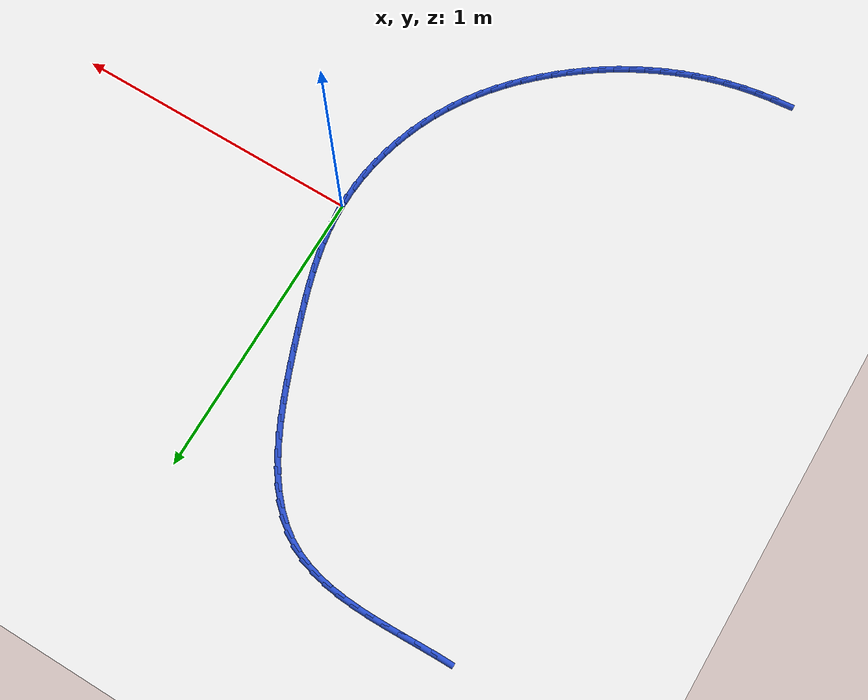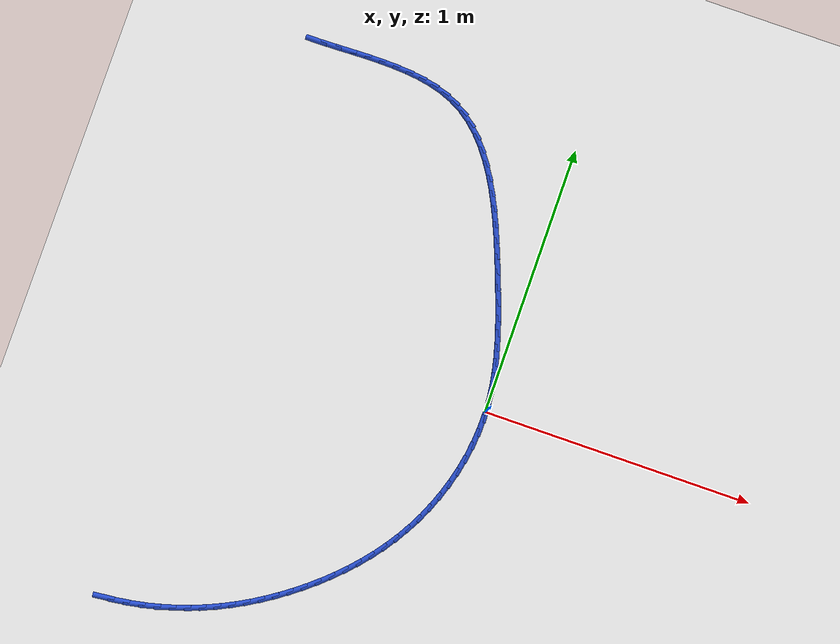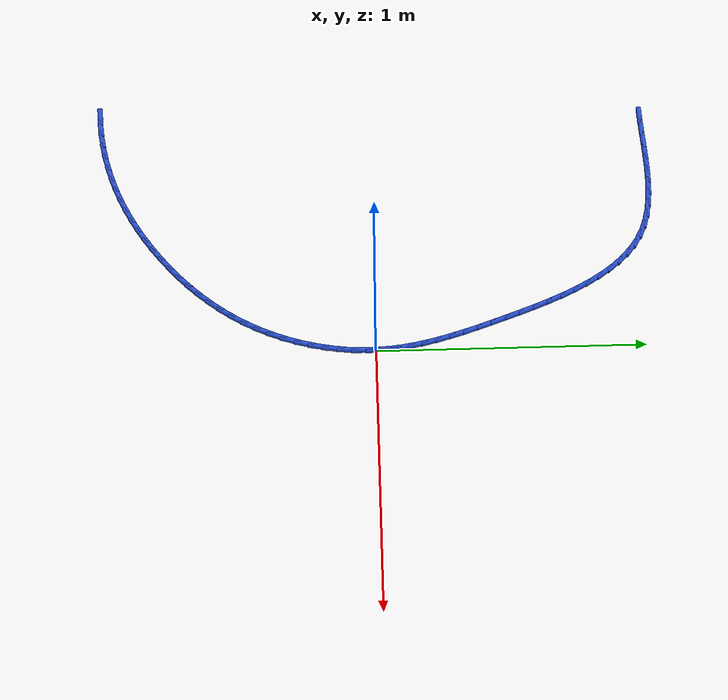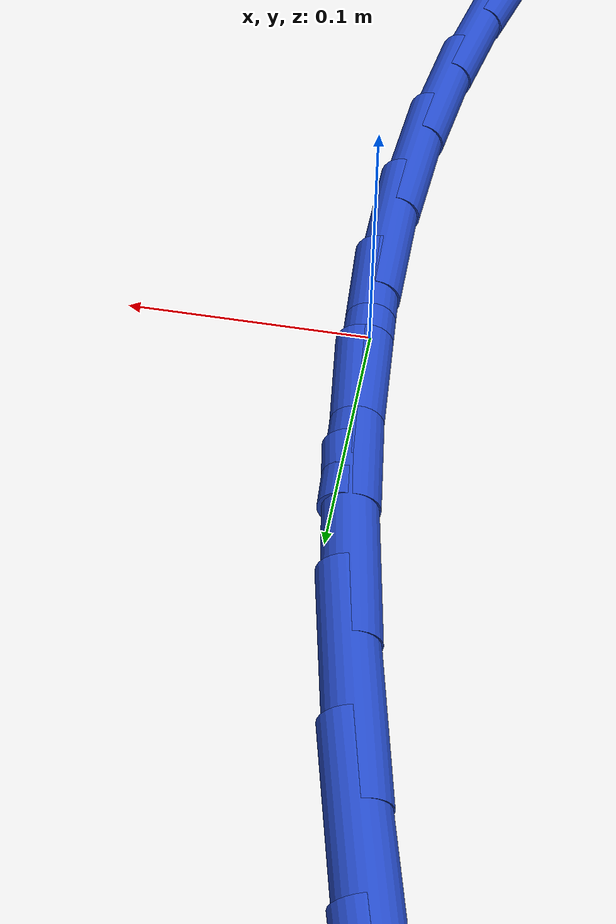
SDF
<sdf version="1.6">
 <world name="default">
  <model name="ground_plane">
   <static>1</static>
   <link name="link">
    <collision name="collision">
     <geometry><plane><normal>0 0 1</normal><size>100 100</size></plane></geometry>
     <surface><friction><ode><mu>100</mu><mu2>50</mu2></ode></friction></surface>
    </collision>
    <visual name="visual">
     <cast_shadows>0</cast_shadows>
     <geometry><plane><normal>0 0 1</normal><size>100 100</size></plane></geometry>
     <material>
      <script><uri>file://media/materials/scripts/gazebo.material</uri><name>Gazebo/WhiteGlow</name></script>
     </material>
    </visual>
   </link>
  </model>
  <model name="line">
   <link name="link_0">
    <pose>-2.42861286636753e-17 -8.326672684688674e-17 0.01 0 1.57 -1.509407505022223</pose>
    <collision name="collision">
     <geometry><cylinder><radius>0.01</radius><length>0.08</length></cylinder></geometry>
    </collision>
    <visual name="visual">
     <material>
      <script><name>Gazebo/Blue</name><uri>file://media/materials/scripts/gazebo.material</uri></script>
     </material>
     <geometry><cylinder><radius>0.01</radius><length>0.08</length></cylinder></geometry>
    </visual>
   </link>
   <link name="link_1">
    <pose>-0.0031903485128099303 0.051904234534951084 0.01 0 1.57 -1.448905125997521</pose>
    <collision name="collision">
     <geometry><cylinder><radius>0.01</radius><length>0.08</length></cylinder></geometry>
    </collision>
    <visual name="visual">
     <material>
      <script><name>Gazebo/Blue</name><uri>file://media/materials/scripts/gazebo.material</uri></script>
     </material>
     <geometry><cylinder><radius>0.01</radius><length>0.08</length></cylinder></geometry>
    </visual>
   </link>
   <link name="link_2">
    <pose>-0.009490720672928235 0.10333648436121304 0.01 0 1.57 -1.3947297541744024</pose>
    <collision name="collision">
     <geometry><cylinder><radius>0.01</radius><length>0.08</length></cylinder></geometry>
    </collision>
    <visual name="visual">
     <material>
      <script><name>Gazebo/Blue</name><uri>file://media/materials/scripts/gazebo.material</uri></script>
     </material>
     <geometry><cylinder><radius>0.01</radius><length>0.08</length></cylinder></geometry>
    </visual>
   </link>
   <link name="link_3">
    <pose>-0.018585847566882273 0.15445891314641036 0.01 0 1.57 -1.3475167694829673</pose>
    <collision name="collision">
     <geometry><cylinder><radius>0.01</radius><length>0.08</length></cylinder></geometry>
    </collision>
    <visual name="visual">
     <material>
      <script><name>Gazebo/Blue</name><uri>file://media/materials/scripts/gazebo.material</uri></script>
     </material>
     <geometry><cylinder><radius>0.01</radius><length>0.08</length></cylinder></geometry>
    </visual>
   </link>
   <link name="link_4">
    <pose>-0.03016046028119939 0.2054336845581677 0.01 0 1.57 -1.3076014209795974</pose>
    <collision name="collision">
     <geometry><cylinder><radius>0.01</radius><length>0.08</length></cylinder></geometry>
    </collision>
    <visual name="visual">
     <material>
      <script><name>Gazebo/Blue</name><uri>file://media/materials/scripts/gazebo.material</uri></script>
     </material>
     <geometry><cylinder><radius>0.01</radius><length>0.08</length></cylinder></geometry>
    </visual>
   </link>
   <link name="link_5">
    <pose>-0.04389928990240697 0.25642296226410977 0.01 0 1.57 -1.2750776742891141</pose>
    <collision name="collision">
     <geometry><cylinder><radius>0.01</radius><length>0.08</length></cylinder></geometry>
    </collision>
    <visual name="visual">
     <material>
      <script><name>Gazebo/Blue</name><uri>file://media/materials/scripts/gazebo.material</uri></script>
     </material>
     <geometry><cylinder><radius>0.01</radius><length>0.08</length></cylinder></geometry>
    </visual>
   </link>
   <link name="link_6">
    <pose>-0.05948706751703232 0.30758890993186094 0.01 0 1.57 -1.2498638487067557</pose>
    <collision name="collision">
     <geometry><cylinder><radius>0.01</radius><length>0.08</length></cylinder></geometry>
    </collision>
    <visual name="visual">
     <material>
      <script><name>Gazebo/Blue</name><uri>file://media/materials/scripts/gazebo.material</uri></script>
     </material>
     <geometry><cylinder><radius>0.01</radius><length>0.08</length></cylinder></geometry>
    </visual>
   </link>
   <link name="link_7">
    <pose>-0.07660852421160283 0.359093691229046 0.01 0 1.57 -1.231762162442797</pose>
    <collision name="collision">
     <geometry><cylinder><radius>0.01</radius><length>0.08</length></cylinder></geometry>
    </collision>
    <visual name="visual">
     <material>
      <script><name>Gazebo/Blue</name><uri>file://media/materials/scripts/gazebo.material</uri></script>
     </material>
     <geometry><cylinder><radius>0.01</radius><length>0.08</length></cylinder></geometry>
    </visual>
   </link>
   <link name="link_8">
    <pose>-0.09494839107264581 0.4110994698232895 0.01 0 1.57 -1.220505767968138</pose>
    <collision name="collision">
     <geometry><cylinder><radius>0.01</radius><length>0.08</length></cylinder></geometry>
    </collision>
    <visual name="visual">
     <material>
      <script><name>Gazebo/Blue</name><uri>file://media/materials/scripts/gazebo.material</uri></script>
     </material>
     <geometry><cylinder><radius>0.01</radius><length>0.08</length></cylinder></geometry>
    </visual>
   </link>
   <link name="link_9">
    <pose>-0.11419139918668866 0.4637684093822162 0.01 0 1.57 -1.213782103676677</pose>
    <collision name="collision">
     <geometry><cylinder><radius>0.01</radius><length>0.08</length></cylinder></geometry>
    </collision>
    <visual name="visual">
     <material>
      <script><name>Gazebo/Blue</name><uri>file://media/materials/scripts/gazebo.material</uri></script>
     </material>
     <geometry><cylinder><radius>0.01</radius><length>0.08</length></cylinder></geometry>
    </visual>
   </link>
   <link name="link_10">
    <pose>-0.13410415264954317 0.5171541123847637 0.01 0 1.57 -1.2029447561874258</pose>
    <collision name="collision">
     <geometry><cylinder><radius>0.01</radius><length>0.08</length></cylinder></geometry>
    </collision>
    <visual name="visual">
     <material>
      <script><name>Gazebo/Blue</name><uri>file://media/materials/scripts/gazebo.material</uri></script>
     </material>
     <geometry><cylinder><radius>0.01</radius><length>0.08</length></cylinder></geometry>
    </visual>
   </link>
   <link name="link_11">
    <pose>-0.15479891496273765 0.5708518471617396 0.01 0 1.57 -1.1856790009862184</pose>
    <collision name="collision">
     <geometry><cylinder><radius>0.01</radius><length>0.08</length></cylinder></geometry>
    </collision>
    <visual name="visual">
     <material>
      <script><name>Gazebo/Blue</name><uri>file://media/materials/scripts/gazebo.material</uri></script>
     </material>
     <geometry><cylinder><radius>0.01</radius><length>0.08</length></cylinder></geometry>
    </visual>
   </link>
   <link name="link_12">
    <pose>-0.17647915547173612 0.6243359457925618 0.01 0 1.57 -1.1616792368808688</pose>
    <collision name="collision">
     <geometry><cylinder><radius>0.01</radius><length>0.08</length></cylinder></geometry>
    </collision>
    <visual name="visual">
     <material>
      <script><name>Gazebo/Blue</name><uri>file://media/materials/scripts/gazebo.material</uri></script>
     </material>
     <geometry><cylinder><radius>0.01</radius><length>0.08</length></cylinder></geometry>
    </visual>
   </link>
   <link name="link_13">
    <pose>-0.19934834402565715 0.6770807396888172 0.01 0 1.57 -1.1303844242910692</pose>
    <collision name="collision">
     <geometry><cylinder><radius>0.01</radius><length>0.08</length></cylinder></geometry>
    </collision>
    <visual name="visual">
     <material>
      <script><name>Gazebo/Blue</name><uri>file://media/materials/scripts/gazebo.material</uri></script>
     </material>
     <geometry><cylinder><radius>0.01</radius><length>0.08</length></cylinder></geometry>
    </visual>
   </link>
   <link name="link_14">
    <pose>-0.22360995047361934 0.7285605602620926 0.01 0 1.57 -1.0909741716764652</pose>
    <collision name="collision">
     <geometry><cylinder><radius>0.01</radius><length>0.08</length></cylinder></geometry>
    </collision>
    <visual name="visual">
     <material>
      <script><name>Gazebo/Blue</name><uri>file://media/materials/scripts/gazebo.material</uri></script>
     </material>
     <geometry><cylinder><radius>0.01</radius><length>0.08</length></cylinder></geometry>
    </visual>
   </link>
   <link name="link_15">
    <pose>-0.24946744466474133 0.7782497389239749 0.01 0 1.57 -1.0423647675983665</pose>
    <collision name="collision">
     <geometry><cylinder><radius>0.01</radius><length>0.08</length></cylinder></geometry>
    </collision>
    <visual name="visual">
     <material>
      <script><name>Gazebo/Blue</name><uri>file://media/materials/scripts/gazebo.material</uri></script>
     </material>
     <geometry><cylinder><radius>0.01</radius><length>0.08</length></cylinder></geometry>
    </visual>
   </link>
   <link name="link_16">
    <pose>-0.27712429644814135 0.8256226070860507 0.01 0 1.57 -0.9832226258414601</pose>
    <collision name="collision">
     <geometry><cylinder><radius>0.01</radius><length>0.08</length></cylinder></geometry>
    </collision>
    <visual name="visual">
     <material>
      <script><name>Gazebo/Blue</name><uri>file://media/materials/scripts/gazebo.material</uri></script>
     </material>
     <geometry><cylinder><radius>0.01</radius><length>0.08</length></cylinder></geometry>
    </visual>
   </link>
   <link name="link_17">
    <pose>-0.3067839756729383 0.8701534961599077 0.01 0 1.57 -0.9120258257607147</pose>
    <collision name="collision">
     <geometry><cylinder><radius>0.01</radius><length>0.08</length></cylinder></geometry>
    </collision>
    <visual name="visual">
     <material>
      <script><name>Gazebo/Blue</name><uri>file://media/materials/scripts/gazebo.material</uri></script>
     </material>
     <geometry><cylinder><radius>0.01</radius><length>0.08</length></cylinder></geometry>
    </visual>
   </link>
   <link name="link_18">
    <pose>-0.33864995218825067 0.9113167375571323 0.01 0 1.57 -0.8272236902606528</pose>
    <collision name="collision">
     <geometry><cylinder><radius>0.01</radius><length>0.08</length></cylinder></geometry>
    </collision>
    <visual name="visual">
     <material>
      <script><name>Gazebo/Blue</name><uri>file://media/materials/scripts/gazebo.material</uri></script>
     </material>
     <geometry><cylinder><radius>0.01</radius><length>0.08</length></cylinder></geometry>
    </visual>
   </link>
   <link name="link_19">
    <pose>-0.3729256958431969 0.9485866626893112 0.01 0 1.57 -0.7275613210673137</pose>
    <collision name="collision">
     <geometry><cylinder><radius>0.01</radius><length>0.08</length></cylinder></geometry>
    </collision>
    <visual name="visual">
     <material>
      <script><name>Gazebo/Blue</name><uri>file://media/materials/scripts/gazebo.material</uri></script>
     </material>
     <geometry><cylinder><radius>0.01</radius><length>0.08</length></cylinder></geometry>
    </visual>
   </link>
   <link name="link_20">
    <pose>-0.4098146764868956 0.9814376029680317 0.01 0 1.57 -0.6126217324154731</pose>
    <collision name="collision">
     <geometry><cylinder><radius>0.01</radius><length>0.08</length></cylinder></geometry>
    </collision>
    <visual name="visual">
     <material>
      <script><name>Gazebo/Blue</name><uri>file://media/materials/scripts/gazebo.material</uri></script>
     </material>
     <geometry><cylinder><radius>0.01</radius><length>0.08</length></cylinder></geometry>
    </visual>
   </link>
   <link name="link_21">
    <pose>-0.4495203639684655 1.0093438898048808 0.01 0 1.57 -0.4848475349232451</pose>
    <collision name="collision">
     <geometry><cylinder><radius>0.01</radius><length>0.08</length></cylinder></geometry>
    </collision>
    <visual name="visual">
     <material>
      <script><name>Gazebo/Blue</name><uri>file://media/materials/scripts/gazebo.material</uri></script>
     </material>
     <geometry><cylinder><radius>0.01</radius><length>0.08</length></cylinder></geometry>
    </visual>
   </link>
   <link name="link_22">
    <pose>-0.492220053722029 1.031837568467524 0.01 0 1.57 -0.36247978700828726</pose>
    <collision name="collision">
     <geometry><cylinder><radius>0.01</radius><length>0.08</length></cylinder></geometry>
    </collision>
    <visual name="visual">
     <material>
      <script><name>Gazebo/Blue</name><uri>file://media/materials/scripts/gazebo.material</uri></script>
     </material>
     <geometry><cylinder><radius>0.01</radius><length>0.08</length></cylinder></geometry>
    </visual>
   </link>
   <link name="link_23">
    <pose>-0.5377881079770124 1.049118643502953 0.01 0 1.57 -0.25802166672443005</pose>
    <collision name="collision">
     <geometry><cylinder><radius>0.01</radius><length>0.08</length></cylinder></geometry>
    </collision>
    <visual name="visual">
     <material>
      <script><name>Gazebo/Blue</name><uri>file://media/materials/scripts/gazebo.material</uri></script>
     </material>
     <geometry><cylinder><radius>0.01</radius><length>0.08</length></cylinder></geometry>
    </visual>
   </link>
   <link name="link_24">
    <pose>-0.585904084656261 1.0618166575286512 0.01 0 1.57 -0.1721284894357185</pose>
    <collision name="collision">
     <geometry><cylinder><radius>0.01</radius><length>0.08</length></cylinder></geometry>
    </collision>
    <visual name="visual">
     <material>
      <script><name>Gazebo/Blue</name><uri>file://media/materials/scripts/gazebo.material</uri></script>
     </material>
     <geometry><cylinder><radius>0.01</radius><length>0.08</length></cylinder></geometry>
    </visual>
   </link>
   <link name="link_25">
    <pose>-0.6362443234198425 1.0705682493418942 0.01 0 1.57 -0.1037933664151148</pose>
    <collision name="collision">
     <geometry><cylinder><radius>0.01</radius><length>0.08</length></cylinder></geometry>
    </collision>
    <visual name="visual">
     <material>
      <script><name>Gazebo/Blue</name><uri>file://media/materials/scripts/gazebo.material</uri></script>
     </material>
     <geometry><cylinder><radius>0.01</radius><length>0.08</length></cylinder></geometry>
    </visual>
   </link>
   <link name="link_26">
    <pose>-0.6884851639278244 1.0760100577399572 0.01 0 1.57 -0.05139983542496204</pose>
    <collision name="collision">
     <geometry><cylinder><radius>0.01</radius><length>0.08</length></cylinder></geometry>
    </collision>
    <visual name="visual">
     <material>
      <script><name>Gazebo/Blue</name><uri>file://media/materials/scripts/gazebo.material</uri></script>
     </material>
     <geometry><cylinder><radius>0.01</radius><length>0.08</length></cylinder></geometry>
    </visual>
   </link>
   <link name="link_27">
    <pose>-0.7423029458402749 1.078778721520117 0.01 0 1.57 -0.01329400211112892</pose>
    <collision name="collision">
     <geometry><cylinder><radius>0.01</radius><length>0.08</length></cylinder></geometry>
    </collision>
    <visual name="visual">
     <material>
      <script><name>Gazebo/Blue</name><uri>file://media/materials/scripts/gazebo.material</uri></script>
     </material>
     <geometry><cylinder><radius>0.01</radius><length>0.08</length></cylinder></geometry>
    </visual>
   </link>
   <link name="link_28">
    <pose>-0.797374008817261 1.0795108794796489 0.01 0 1.57 0.011922665601863405</pose>
    <collision name="collision">
     <geometry><cylinder><radius>0.01</radius><length>0.08</length></cylinder></geometry>
    </collision>
    <visual name="visual">
     <material>
      <script><name>Gazebo/Blue</name><uri>file://media/materials/scripts/gazebo.material</uri></script>
     </material>
     <geometry><cylinder><radius>0.01</radius><length>0.08</length></cylinder></geometry>
    </visual>
   </link>
   <link name="link_29">
    <pose>-0.8533746925188507 1.0788431704158281 0.01 0 1.57 0.02527322783878437</pose>
    <collision name="collision">
     <geometry><cylinder><radius>0.01</radius><length>0.08</length></cylinder></geometry>
    </collision>
    <visual name="visual">
     <material>
      <script><name>Gazebo/Blue</name><uri>file://media/materials/scripts/gazebo.material</uri></script>
     </material>
     <geometry><cylinder><radius>0.01</radius><length>0.08</length></cylinder></geometry>
    </visual>
   </link>
   <link name="link_30">
    <pose>-0.9099813366051117 1.077412233125931 0.01 0 1.57 0.027371535123915446</pose>
    <collision name="collision">
     <geometry><cylinder><radius>0.01</radius><length>0.08</length></cylinder></geometry>
    </collision>
    <visual name="visual">
     <material>
      <script><name>Gazebo/Blue</name><uri>file://media/materials/scripts/gazebo.material</uri></script>
     </material>
     <geometry><cylinder><radius>0.01</radius><length>0.08</length></cylinder></geometry>
    </visual>
   </link>
   <link name="link_31">
    <pose>-0.9668702807361116 1.0758547064072332 0.01 0 1.57 0.018423981411699646</pose>
    <collision name="collision">
     <geometry><cylinder><radius>0.01</radius><length>0.08</length></cylinder></geometry>
    </collision>
    <visual name="visual">
     <material>
      <script><name>Gazebo/Blue</name><uri>file://media/materials/scripts/gazebo.material</uri></script>
     </material>
     <geometry><cylinder><radius>0.01</radius><length>0.08</length></cylinder></geometry>
    </visual>
   </link>
   <link name="link_32">
    <pose>-1.023717864571918 1.0748072290570103 0.01 0 1.57 -0.001754503637904101</pose>
    <collision name="collision">
     <geometry><cylinder><radius>0.01</radius><length>0.08</length></cylinder></geometry>
    </collision>
    <visual name="visual">
     <material>
      <script><name>Gazebo/Blue</name><uri>file://media/materials/scripts/gazebo.material</uri></script>
     </material>
     <geometry><cylinder><radius>0.01</radius><length>0.08</length></cylinder></geometry>
    </visual>
   </link>
   <link name="link_99">
    <pose>-1.0755688227055293 -1.0739991441265555 0.01 0 1.57 0.09906669944908754</pose>
    <collision name="collision">
     <geometry><cylinder><radius>0.01</radius><length>0.08</length></cylinder></geometry>
    </collision>
    <visual name="visual">
     <material>
      <script><name>Gazebo/Blue</name><uri>file://media/materials/scripts/gazebo.material</uri></script>
     </material>
     <geometry><cylinder><radius>0.01</radius><length>0.08</length></cylinder></geometry>
    </visual>
   </link>
   <link name="link_100">
    <pose>-1.0196323815741188 -1.0684395057925444 0.01 0 1.57 0.14825849634331956</pose>
    <collision name="collision">
     <geometry><cylinder><radius>0.01</radius><length>0.08</length></cylinder></geometry>
    </collision>
    <visual name="visual">
     <material>
      <script><name>Gazebo/Blue</name><uri>file://media/materials/scripts/gazebo.material</uri></script>
     </material>
     <geometry><cylinder><radius>0.01</radius><length>0.08</length></cylinder></geometry>
    </visual>
   </link>
   <link name="link_101">
    <pose>-0.9642450071730573 -1.0601671576025444 0.01 0 1.57 0.19606597302785184</pose>
    <collision name="collision">
     <geometry><cylinder><radius>0.01</radius><length>0.08</length></cylinder></geometry>
    </collision>
    <visual name="visual">
     <material>
      <script><name>Gazebo/Blue</name><uri>file://media/materials/scripts/gazebo.material</uri></script>
     </material>
     <geometry><cylinder><radius>0.01</radius><length>0.08</length></cylinder></geometry>
    </visual>
   </link>
   <link name="link_102">
    <pose>-0.9097798497553291 -1.0493494189434818 0.01 0 1.57 0.24325319026051814</pose>
    <collision name="collision">
     <geometry><cylinder><radius>0.01</radius><length>0.08</length></cylinder></geometry>
    </collision>
    <visual name="visual">
     <material>
      <script><name>Gazebo/Blue</name><uri>file://media/materials/scripts/gazebo.material</uri></script>
     </material>
     <geometry><cylinder><radius>0.01</radius><length>0.08</length></cylinder></geometry>
    </visual>
   </link>
   <link name="link_103">
    <pose>-0.8565199951096579 -1.0361320553635363 0.01 0 1.57 0.2901202014684126</pose>
    <collision name="collision">
     <geometry><cylinder><radius>0.01</radius><length>0.08</length></cylinder></geometry>
    </collision>
    <visual name="visual">
     <material>
      <script><name>Gazebo/Blue</name><uri>file://media/materials/scripts/gazebo.material</uri></script>
     </material>
     <geometry><cylinder><radius>0.01</radius><length>0.08</length></cylinder></geometry>
    </visual>
   </link>
   <link name="link_104">
    <pose>-0.8044922637349261 -1.0205995041081175 0.01 0 1.57 0.33648572219057266</pose>
    <collision name="collision">
     <geometry><cylinder><radius>0.01</radius><length>0.08</length></cylinder></geometry>
    </collision>
    <visual name="visual">
     <material>
      <script><name>Gazebo/Blue</name><uri>file://media/materials/scripts/gazebo.material</uri></script>
     </material>
     <geometry><cylinder><radius>0.01</radius><length>0.08</length></cylinder></geometry>
    </visual>
   </link>
   <link name="link_105">
    <pose>-0.7536782015646435 -1.002825367509117 0.01 0 1.57 0.3821485261123411</pose>
    <collision name="collision">
     <geometry><cylinder><radius>0.01</radius><length>0.08</length></cylinder></geometry>
    </collision>
    <visual name="visual">
     <material>
      <script><name>Gazebo/Blue</name><uri>file://media/materials/scripts/gazebo.material</uri></script>
     </material>
     <geometry><cylinder><radius>0.01</radius><length>0.08</length></cylinder></geometry>
    </visual>
   </link>
   <link name="link_106">
    <pose>-0.7040593545323195 -0.9828832478984256 0.01 0 1.57 0.4269246313561858</pose>
    <collision name="collision">
     <geometry><cylinder><radius>0.01</radius><length>0.08</length></cylinder></geometry>
    </collision>
    <visual name="visual">
     <material>
      <script><name>Gazebo/Blue</name><uri>file://media/materials/scripts/gazebo.material</uri></script>
     </material>
     <geometry><cylinder><radius>0.01</radius><length>0.08</length></cylinder></geometry>
    </visual>
   </link>
   <link name="link_107">
    <pose>-0.6556172685714637 -0.9608467476079351 0.01 0 1.57 0.4706509041190778</pose>
    <collision name="collision">
     <geometry><cylinder><radius>0.01</radius><length>0.08</length></cylinder></geometry>
    </collision>
    <visual name="visual">
     <material>
      <script><name>Gazebo/Blue</name><uri>file://media/materials/scripts/gazebo.material</uri></script>
     </material>
     <geometry><cylinder><radius>0.01</radius><length>0.08</length></cylinder></geometry>
    </visual>
   </link>
   <link name="link_108">
    <pose>-0.6083334896155875 -0.9367894689695374 0.01 0 1.57 0.5131874711183476</pose>
    <collision name="collision">
     <geometry><cylinder><radius>0.01</radius><length>0.08</length></cylinder></geometry>
    </collision>
    <visual name="visual">
     <material>
      <script><name>Gazebo/Blue</name><uri>file://media/materials/scripts/gazebo.material</uri></script>
     </material>
     <geometry><cylinder><radius>0.01</radius><length>0.08</length></cylinder></geometry>
    </visual>
   </link>
   <link name="link_109">
    <pose>-0.5621895635981999 -0.9107850143151236 0.01 0 1.57 0.5544189295056463</pose>
    <collision name="collision">
     <geometry><cylinder><radius>0.01</radius><length>0.08</length></cylinder></geometry>
    </collision>
    <visual name="visual">
     <material>
      <script><name>Gazebo/Blue</name><uri>file://media/materials/scripts/gazebo.material</uri></script>
     </material>
     <geometry><cylinder><radius>0.01</radius><length>0.08</length></cylinder></geometry>
    </visual>
   </link>
   <link name="link_110">
    <pose>-0.5171670364528101 -0.8829069859765845 0.01 0 1.57 0.5942544435971266</pose>
    <collision name="collision">
     <geometry><cylinder><radius>0.01</radius><length>0.08</length></cylinder></geometry>
    </collision>
    <visual name="visual">
     <material>
      <script><name>Gazebo/Blue</name><uri>file://media/materials/scripts/gazebo.material</uri></script>
     </material>
     <geometry><cylinder><radius>0.01</radius><length>0.08</length></cylinder></geometry>
    </visual>
   </link>
   <link name="link_111">
    <pose>-0.4732474541129293 -0.8532289862858125 0.01 0 1.57 0.6326269174685023</pose>
    <collision name="collision">
     <geometry><cylinder><radius>0.01</radius><length>0.08</length></cylinder></geometry>
    </collision>
    <visual name="visual">
     <material>
      <script><name>Gazebo/Blue</name><uri>file://media/materials/scripts/gazebo.material</uri></script>
     </material>
     <geometry><cylinder><radius>0.01</radius><length>0.08</length></cylinder></geometry>
    </visual>
   </link>
   <link name="link_112">
    <pose>-0.4304123639919645 -0.8218246169574078 0.01 0 1.57 0.6701196075840425</pose>
    <collision name="collision">
     <geometry><cylinder><radius>0.01</radius><length>0.08</length></cylinder></geometry>
    </collision>
    <visual name="visual">
     <material>
      <script><name>Gazebo/Blue</name><uri>file://media/materials/scripts/gazebo.material</uri></script>
     </material>
     <geometry><cylinder><radius>0.01</radius><length>0.08</length></cylinder></geometry>
    </visual>
   </link>
   <link name="link_113">
    <pose>-0.3886786152460525 -0.7887527547368068 0.01 0 1.57 0.7090345887183538</pose>
    <collision name="collision">
     <geometry><cylinder><radius>0.01</radius><length>0.08</length></cylinder></geometry>
    </collision>
    <visual name="visual">
     <material>
      <script><name>Gazebo/Blue</name><uri>file://media/materials/scripts/gazebo.material</uri></script>
     </material>
     <geometry><cylinder><radius>0.01</radius><length>0.08</length></cylinder></geometry>
    </visual>
   </link>
   <link name="link_114">
    <pose>-0.34818983307389806 -0.754019395883294 0.01 0 1.57 0.7500223178862849</pose>
    <collision name="collision">
     <geometry><cylinder><radius>0.01</radius><length>0.08</length></cylinder></geometry>
    </collision>
    <visual name="visual">
     <material>
      <script><name>Gazebo/Blue</name><uri>file://media/materials/scripts/gazebo.material</uri></script>
     </material>
     <geometry><cylinder><radius>0.01</radius><length>0.08</length></cylinder></geometry>
    </visual>
   </link>
   <link name="link_115">
    <pose>-0.30911809092470094 -0.7176186703974677 0.01 0 1.57 0.7932243683820709</pose>
    <collision name="collision">
     <geometry><cylinder><radius>0.01</radius><length>0.08</length></cylinder></geometry>
    </collision>
    <visual name="visual">
     <material>
      <script><name>Gazebo/Blue</name><uri>file://media/materials/scripts/gazebo.material</uri></script>
     </material>
     <geometry><cylinder><radius>0.01</radius><length>0.08</length></cylinder></geometry>
    </visual>
   </link>
   <link name="link_116">
    <pose>-0.271635462247663 -0.6795447082799267 0.01 0 1.57 0.8387645108649066</pose>
    <collision name="collision">
     <geometry><cylinder><radius>0.01</radius><length>0.08</length></cylinder></geometry>
    </collision>
    <visual name="visual">
     <material>
      <script><name>Gazebo/Blue</name><uri>file://media/materials/scripts/gazebo.material</uri></script>
     </material>
     <geometry><cylinder><radius>0.01</radius><length>0.08</length></cylinder></geometry>
    </visual>
   </link>
   <link name="link_117">
    <pose>-0.23591402049198432 -0.6397916395312687 0.01 0 1.57 0.8867412357776526</pose>
    <collision name="collision">
     <geometry><cylinder><radius>0.01</radius><length>0.08</length></cylinder></geometry>
    </collision>
    <visual name="visual">
     <material>
      <script><name>Gazebo/Blue</name><uri>file://media/materials/scripts/gazebo.material</uri></script>
     </material>
     <geometry><cylinder><radius>0.01</radius><length>0.08</length></cylinder></geometry>
    </visual>
   </link>
   <link name="link_118">
    <pose>-0.2021258391068649 -0.5983535941520911 0.01 0 1.57 0.9372188157359728</pose>
    <collision name="collision">
     <geometry><cylinder><radius>0.01</radius><length>0.08</length></cylinder></geometry>
    </collision>
    <visual name="visual">
     <material>
      <script><name>Gazebo/Blue</name><uri>file://media/materials/scripts/gazebo.material</uri></script>
     </material>
     <geometry><cylinder><radius>0.01</radius><length>0.08</length></cylinder></geometry>
    </visual>
   </link>
   <link name="link_119">
    <pose>-0.1704429915415064 -0.5552247021429932 0.01 0 1.57 0.990217216728951</pose>
    <collision name="collision">
     <geometry><cylinder><radius>0.01</radius><length>0.08</length></cylinder></geometry>
    </collision>
    <visual name="visual">
     <material>
      <script><name>Gazebo/Blue</name><uri>file://media/materials/scripts/gazebo.material</uri></script>
     </material>
     <geometry><cylinder><radius>0.01</radius><length>0.08</length></cylinder></geometry>
    </visual>
   </link>
   <link name="link_120">
    <pose>-0.14103755124510892 -0.5103990935045724 0.01 0 1.57 1.0457014674137624</pose>
    <collision name="collision">
     <geometry><cylinder><radius>0.01</radius><length>0.08</length></cylinder></geometry>
    </collision>
    <visual name="visual">
     <material>
      <script><name>Gazebo/Blue</name><uri>file://media/materials/scripts/gazebo.material</uri></script>
     </material>
     <geometry><cylinder><radius>0.01</radius><length>0.08</length></cylinder></geometry>
    </visual>
   </link>
   <link name="link_121">
    <pose>-0.11408159158667104 -0.4638708984953312 0.01 0 1.57 1.102941703900789</pose>
    <collision name="collision">
     <geometry><cylinder><radius>0.01</radius><length>0.08</length></cylinder></geometry>
    </collision>
    <visual name="visual">
     <material>
      <script><name>Gazebo/Blue</name><uri>file://media/materials/scripts/gazebo.material</uri></script>
     </material>
     <geometry><cylinder><radius>0.01</radius><length>0.08</length></cylinder></geometry>
    </visual>
   </link>
   <link name="link_122">
    <pose>-0.08973266230327892 -0.41568095076804396 0.01 0 1.57 1.1596620796470425</pose>
    <collision name="collision">
     <geometry><cylinder><radius>0.01</radius><length>0.08</length></cylinder></geometry>
    </collision>
    <visual name="visual">
     <material>
      <script><name>Gazebo/Blue</name><uri>file://media/materials/scripts/gazebo.material</uri></script>
     </material>
     <geometry><cylinder><radius>0.01</radius><length>0.08</length></cylinder></geometry>
    </visual>
   </link>
   <link name="link_123">
    <pose>-0.06809327027775541 -0.3660470843387543 0.01 0 1.57 1.2157637666282153</pose>
    <collision name="collision">
     <geometry><cylinder><radius>0.01</radius><length>0.08</length></cylinder></geometry>
    </collision>
    <visual name="visual">
     <material>
      <script><name>Gazebo/Blue</name><uri>file://media/materials/scripts/gazebo.material</uri></script>
     </material>
     <geometry><cylinder><radius>0.01</radius><length>0.08</length></cylinder></geometry>
    </visual>
   </link>
   <link name="link_124">
    <pose>-0.0492528849229652 -0.31522905759225345 0.01 0 1.57 1.2717473229664158</pose>
    <collision name="collision">
     <geometry><cylinder><radius>0.01</radius><length>0.08</length></cylinder></geometry>
    </collision>
    <visual name="visual">
     <material>
      <script><name>Gazebo/Blue</name><uri>file://media/materials/scripts/gazebo.material</uri></script>
     </material>
     <geometry><cylinder><radius>0.01</radius><length>0.08</length></cylinder></geometry>
    </visual>
   </link>
   <link name="link_125">
    <pose>-0.0333009756517719 -0.26348662891332975 0.01 0 1.57 1.328114209290235</pose>
    <collision name="collision">
     <geometry><cylinder><radius>0.01</radius><length>0.08</length></cylinder></geometry>
    </collision>
    <visual name="visual">
     <material>
      <script><name>Gazebo/Blue</name><uri>file://media/materials/scripts/gazebo.material</uri></script>
     </material>
     <geometry><cylinder><radius>0.01</radius><length>0.08</length></cylinder></geometry>
    </visual>
   </link>
   <link name="link_126">
    <pose>-0.0203270118770394 -0.2110795566867721 0.01 0 1.57 1.385369596858235</pose>
    <collision name="collision">
     <geometry><cylinder><radius>0.01</radius><length>0.08</length></cylinder></geometry>
    </collision>
    <visual name="visual">
     <material>
      <script><name>Gazebo/Blue</name><uri>file://media/materials/scripts/gazebo.material</uri></script>
     </material>
     <geometry><cylinder><radius>0.01</radius><length>0.08</length></cylinder></geometry>
    </visual>
   </link>
   <link name="link_127">
    <pose>-0.010420463011632079 -0.15826759929737133 0.01 0 1.57 1.4440244762185315</pose>
    <collision name="collision">
     <geometry><cylinder><radius>0.01</radius><length>0.08</length></cylinder></geometry>
    </collision>
    <visual name="visual">
     <material>
      <script><name>Gazebo/Blue</name><uri>file://media/materials/scripts/gazebo.material</uri></script>
     </material>
     <geometry><cylinder><radius>0.01</radius><length>0.08</length></cylinder></geometry>
    </visual>
   </link>
   <link name="link_128">
    <pose>-0.0036707984684137326 -0.10531051512991617 0.01 0 1.57 1.504595925458532</pose>
    <collision name="collision">
     <geometry><cylinder><radius>0.01</radius><length>0.08</length></cylinder></geometry>
    </collision>
    <visual name="visual">
     <material>
      <script><name>Gazebo/Blue</name><uri>file://media/materials/scripts/gazebo.material</uri></script>
     </material>
     <geometry><cylinder><radius>0.01</radius><length>0.08</length></cylinder></geometry>
    </visual>
   </link>
   <link name="link_129">
    <pose>-0.00016748766024837942 -0.05246806256919596 0.01 0 1.57 1.5676041545829082</pose>
    <collision name="collision">
     <geometry><cylinder><radius>0.01</radius><length>0.08</length></cylinder></geometry>
    </collision>
    <visual name="visual">
     <material>
      <script><name>Gazebo/Blue</name><uri>file://media/materials/scripts/gazebo.material</uri></script>
     </material>
     <geometry><cylinder><radius>0.01</radius><length>0.08</length></cylinder></geometry>
    </visual>
   </link>
   <link name="link_130">
    <pose>-2.42861286636753e-17 -1.5265566588595902e-16 0.01 0 1.57 -1.5080280524068759</pose>
    <collision name="collision">
     <geometry><cylinder><radius>0.01</radius><length>0.08</length></cylinder></geometry>
    </collision>
    <visual name="visual">
     <material>
      <script><name>Gazebo/Blue</name><uri>file://media/materials/scripts/gazebo.material</uri></script>
     </material>
     <geometry><cylinder><radius>0.01</radius><length>0.08</length></cylinder></geometry>
    </visual>
   </link>
   <link name="link_131">
    <pose>-0.003257804900532693 0.05183391419288183 0.01 0 1.57 -1.5080280524068757</pose>
    <collision name="collision">
     <geometry><cylinder><radius>0.01</radius><length>0.08</length></cylinder></geometry>
    </collision>
    <visual name="visual">
     <material>
      <script><name>Gazebo/Blue</name><uri>file://media/materials/scripts/gazebo.material</uri></script>
     </material>
     <geometry><cylinder><radius>0.01</radius><length>0.08</length></cylinder></geometry>
    </visual>
   </link>
  </model>
 </world>
</sdf>
